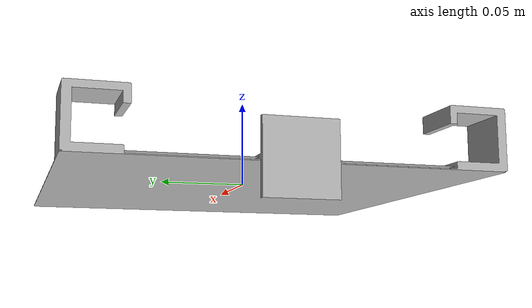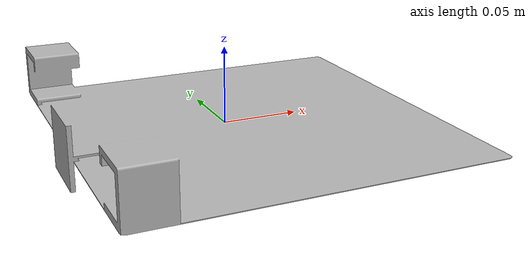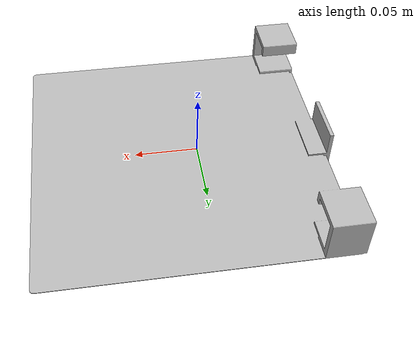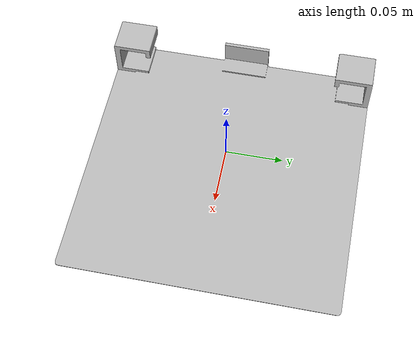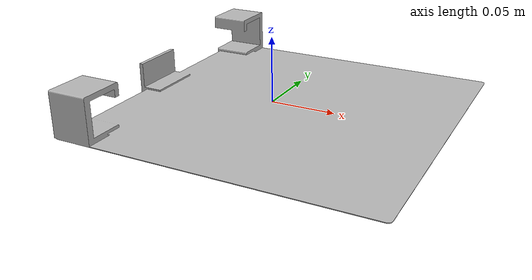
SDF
<?xml version="1.0" ?>
<sdf version="1.6">
  <model name="ender3bed0">
    <static>true</static>
    <link name="link">
      <collision name="collision">
        <pose>0 0 0 0 0 -1.57079632679</pose>
        <geometry>
          <mesh>
            <scale>1 1 1</scale>
            <uri>model://printbed0/meshes/moddedprintbed.dae</uri>
          </mesh>
        </geometry>
      </collision>
      <visual name="visual">
        <pose>0 0 0 0 0 -1.57079632679</pose>
        <geometry>
          <mesh>
            <scale>1 1 1</scale>
            <uri>model://printbed0/meshes/moddedprintbed.dae</uri>
          </mesh>
        </geometry>
      </visual>
    </link>
  </model>
</sdf>
